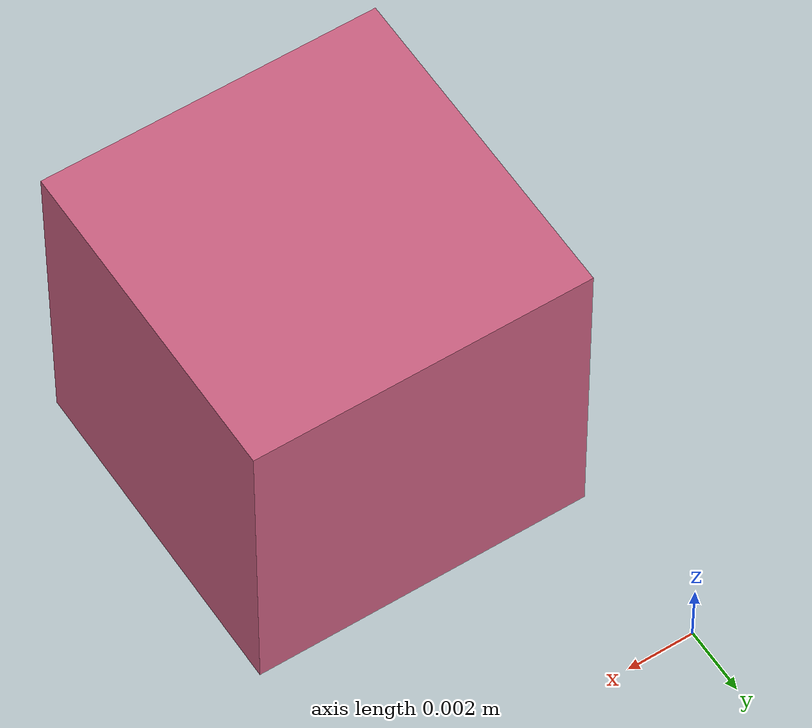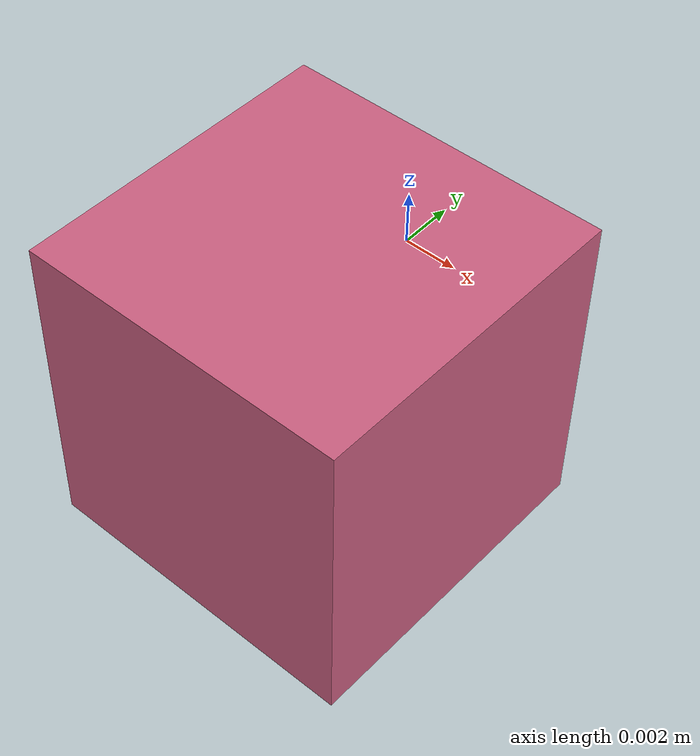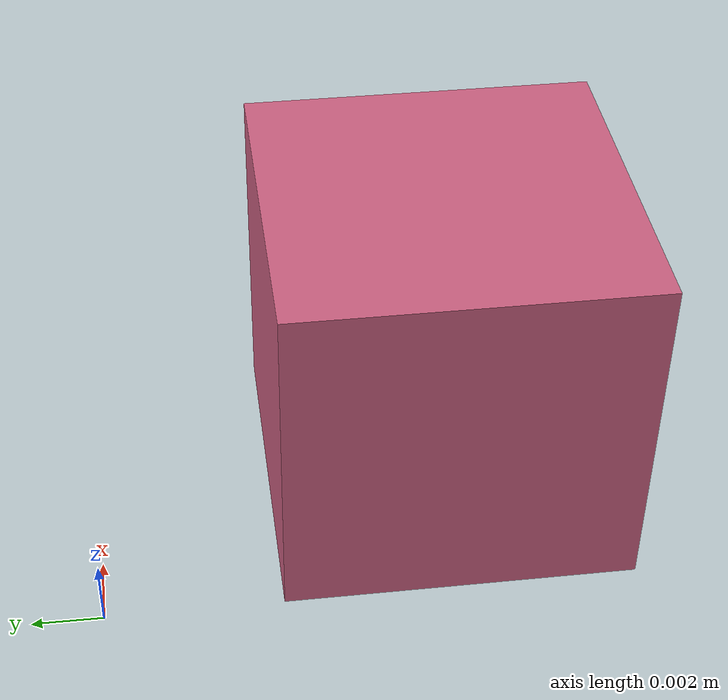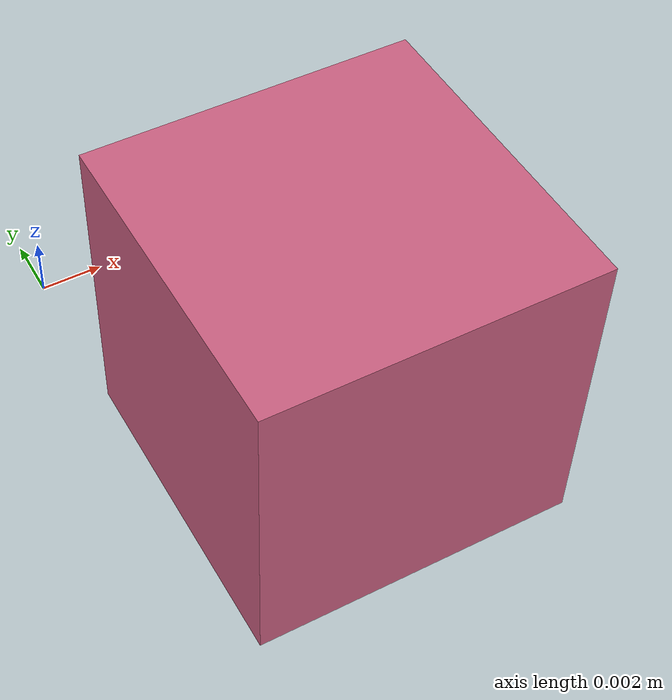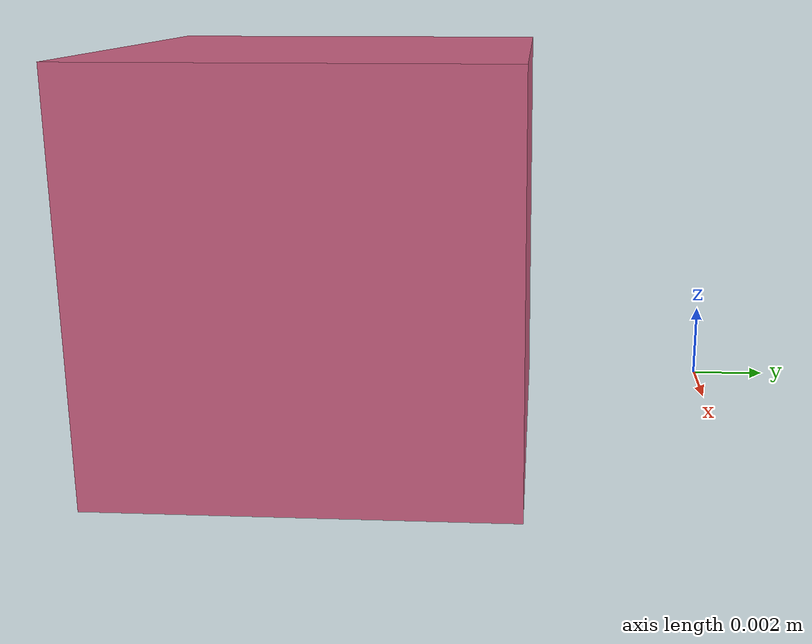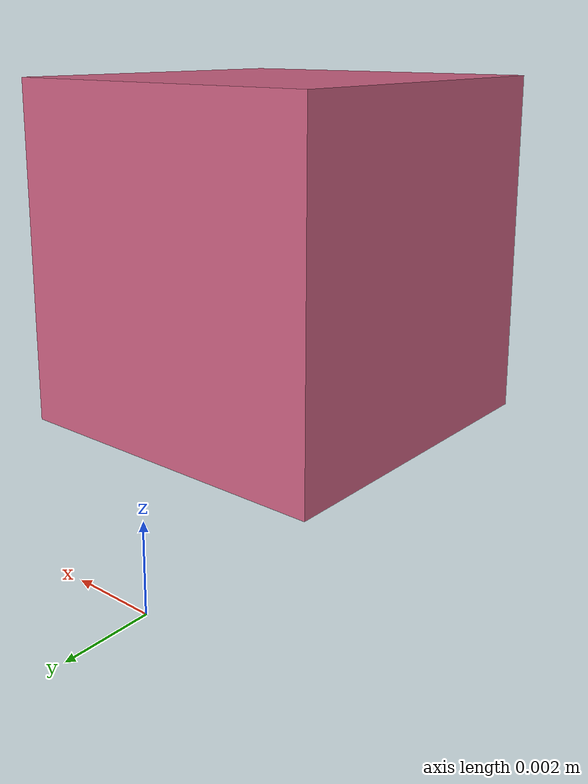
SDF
<?xml version='1.0'?>
<sdf version="1.4">
  <model name="Cube001">
    <link name="Cube001">
    <gravity>0</gravity>
      <collision name="collision">
        <mesh>
          <uri>model://meshes/Cube001.dae</uri>
        </mesh>
      </collision>
      <visual name="visual">
        <geometry>
          <mesh>
            <uri>model://meshes/Cube001.dae</uri>
          </mesh>
        </geometry>
        <surface>
          <friction>
            <ode>
              <mu>0.0</mu>
            </ode>
          </friction>
        </surface>
      </visual>
  </link>
  </model>
</sdf>
